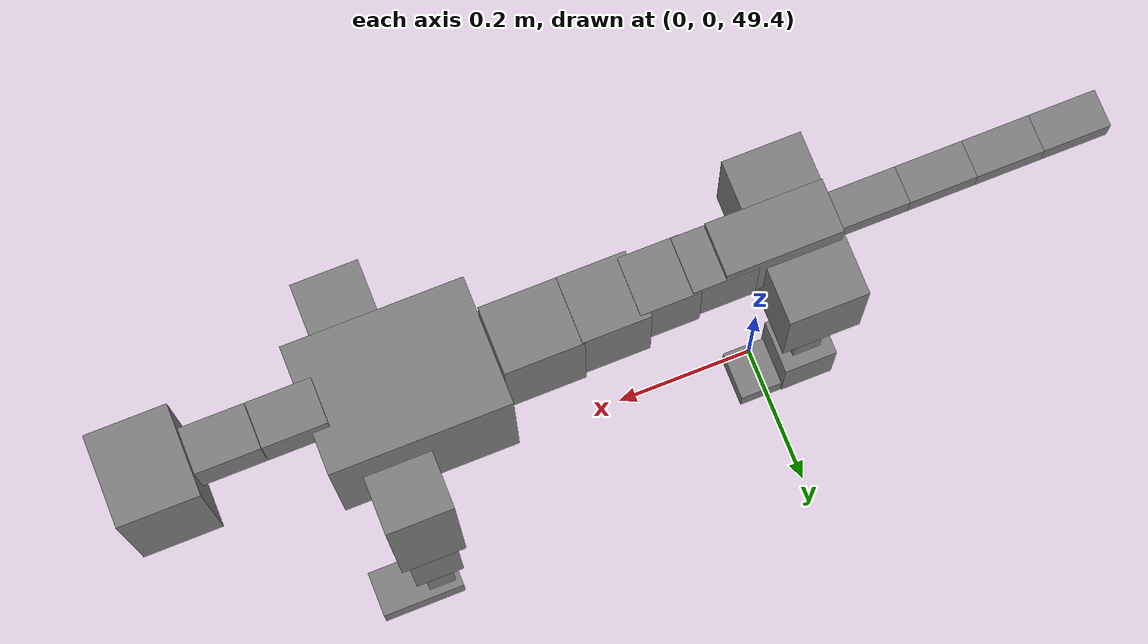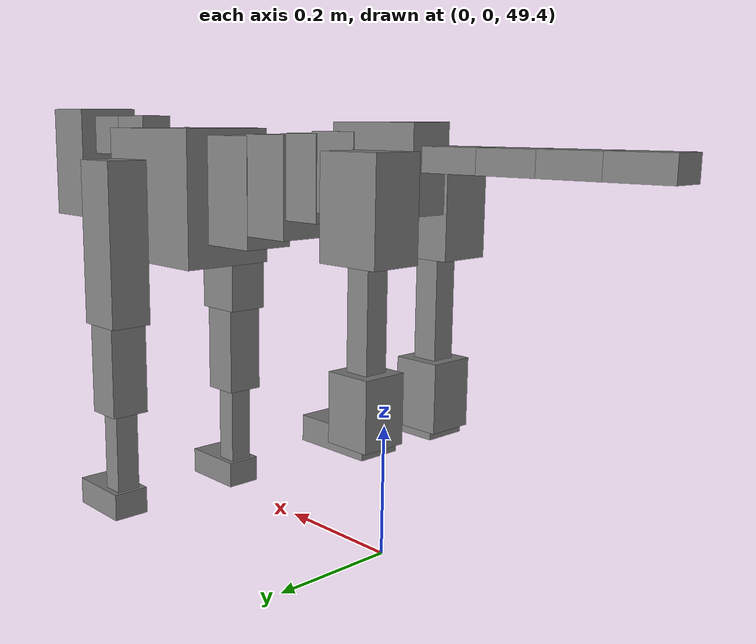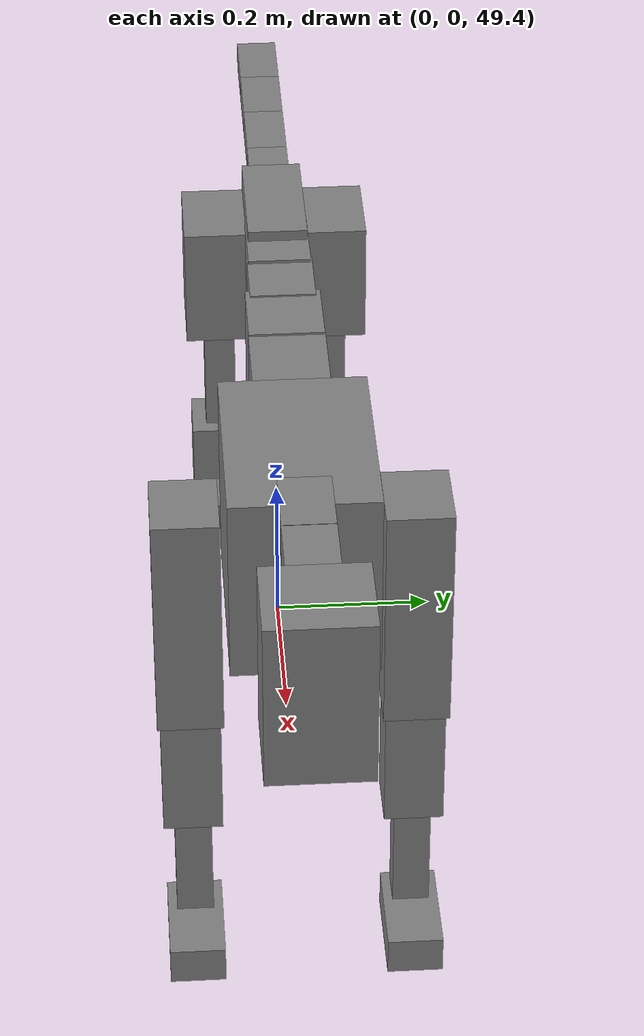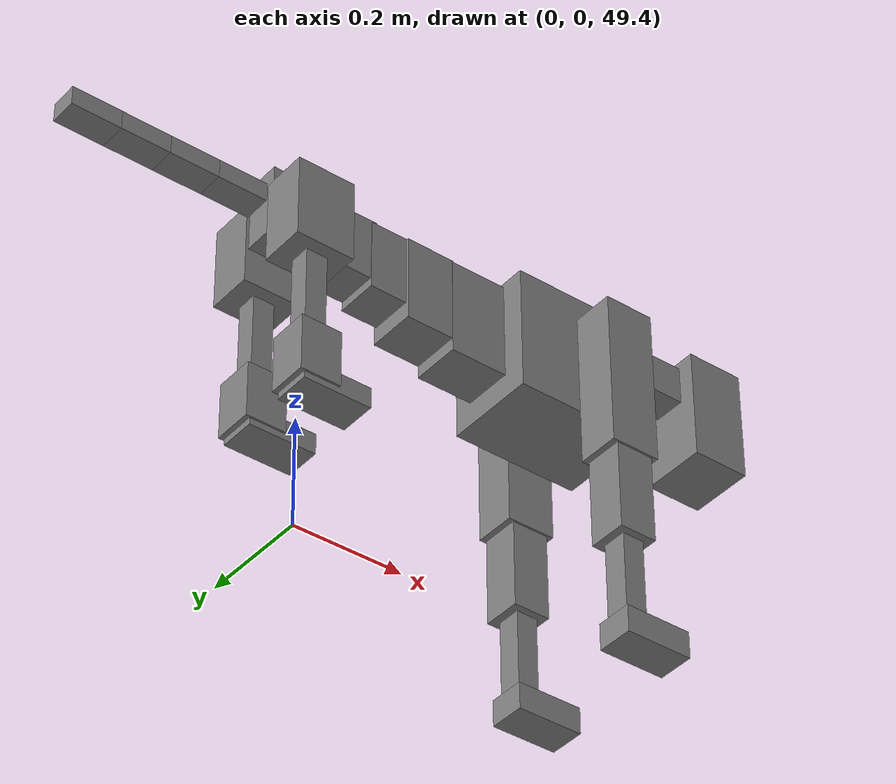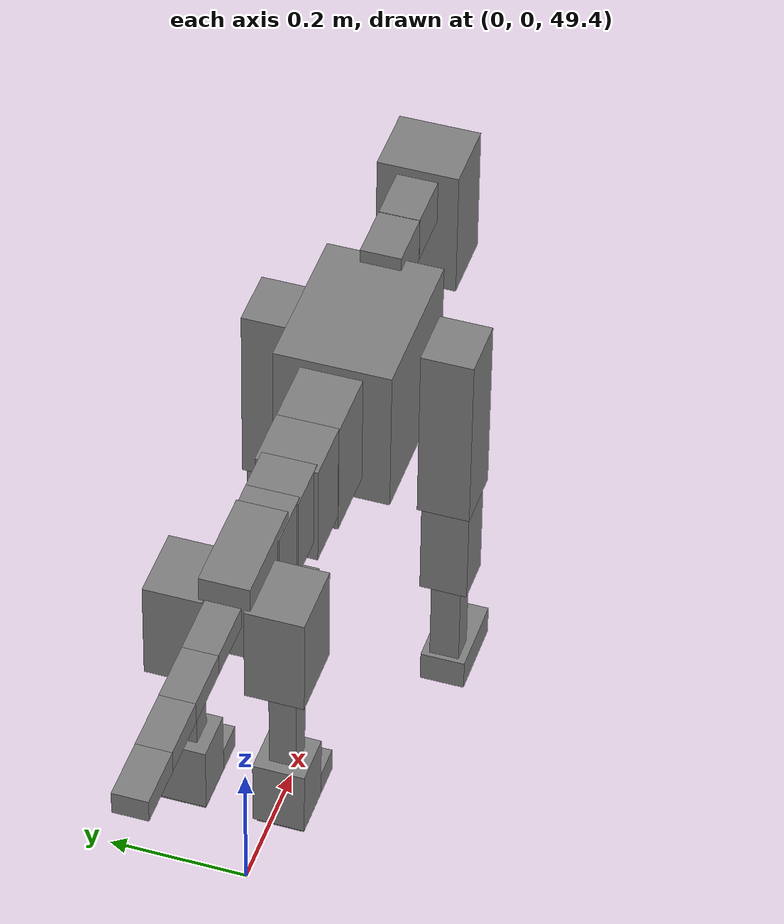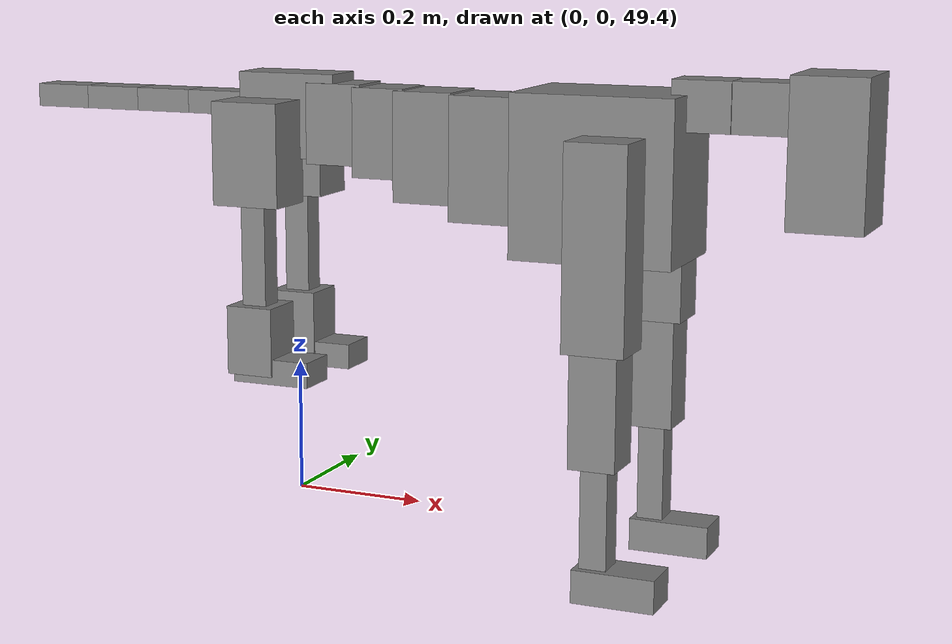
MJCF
<mujoco model="dog">

    <default>
        <joint armature="0.02" stiffness="1" damping="0.2" limited="true"/>
        <geom condim="3" friction="1 0.05 0.05" margin="0.01"/>
        <motor ctrllimited="true" ctrlrange="-1.0 1.0" forcelimited="true" gear="50"/>
    </default>

    <compiler inertiafromgeom="true" angle="radian"/>

    <option timestep="0.016" iterations="50" tolerance="1e-10" solver="Newton" jacobian="dense" cone="pyramidal"/>

    <size nconmax="20000" njmax="60000" nstack="5000000"/>
    <visual>
        <map force="0.1" zfar="30"/>
        <rgba haze="0.15 0.25 0.35 1"/>
        <quality shadowsize="2048"/>
        <global offwidth="800" offheight="800"/>
    </visual>

    <asset>
        <texture type="skybox" builtin="gradient" rgb1="0.3 0.5 0.7" rgb2="0 0 0" width="512" height="512"/>
        <texture name="texplane" type="2d" builtin="checker" rgb1=".2 .3 .4" rgb2=".1 0.15 0.2" width="512" height="512"
                 mark="cross" markrgb=".8 .8 .8"/>
        <texture name="texgeom" type="cube" builtin="flat" mark="cross" width="127" height="1278" rgb1="0.8 0.6 0.4"
                 rgb2="0.8 0.6 0.4" markrgb="1 1 1" random="0.01"/>

        <material name="matplane" reflectance="0.3" texture="texplane" texrepeat="1 1" texuniform="true"/>
        <material name="matgeom" texture="texgeom" texuniform="true" rgba="0.8 0.6 .4 1"/>
    </asset>

    <worldbody>
        <geom name="floor" pos="0 0 0" size="0 0 .25" type="plane" material="matplane" condim="3"/>

        <light directional="false" diffuse=".2 .2 .2" specular="0 0 0" pos="0 0 5" dir="0 0 -1" castshadow="false"/>
        <light mode="targetbodycom" target="torso" directional="false" diffuse=".8 .8 .8" specular="0.3 0.3 0.3"
               pos="0 0 4.0" dir="0 0 -1"/>

        <body name="root" pos="0 0 50">
            <freejoint name="root_1"/>
            <geom type="box" pos="0 0 -0.02" size="0.0774  0.0358  0.063" density="2030"/>

            <body name="spine1" pos="0.054 0 0">
                <joint name="spine1_y" axis="0 1 0" range="0 0.7" limited="true"/>
                <geom type="box" pos="0.02375 0 -0.03" size="0.04375  0.0375  0.05985" density="2030"/>

                <body name="spine2" pos="0.0612 0 0">
                    <joint name="spine2_y" axis="0 1 0" range="-0.15 0.15" limited="true"/>
                    <geom type="box" pos="0.03555  0  -0.04" size="0.04055  0.039  0.06615" density="2030"/>

                    <body name="spine3" pos="0.0730 0 0">
                        <joint name="spine3_y" axis="0 1 0" range="-0.15 0.15" limited="true"/>
                        <geom type="box" pos="0.03555  0  -0.057" size="0.04555  0.0445  0.081" density="2030"/>

                        <body name="spine4" pos="0.0780 0 0">
                            <joint name="spine4_y" axis="0 1 0" range="-0.15 0.15" limited="true"/>
                            <geom type="box" pos="0.05265  0  -0.07" size="0.05265  0.045  0.09135" density="2030"/>

                            <body name="torso" pos="0.1082 0 0">
                                <joint name="torso_y" axis="0 1 0" range="-0.15 0.15" limited="true"/>
                                <geom type="box" pos="0.11925  0  -0.085" size="0.11925  0.085  0.11745"
                                      density="2030"/>

                                <body name="neck1" pos="0.2160  0   0.0180">
                                    <joint name="neck1_y" axis="0 1 0" range="-1.2  -1" limited="true"/>
                                    <geom type="box" pos="0.0423  0  0" size="0.0423  0.03  0.036" density="2325"/>

                                    <body name="neck2" pos="0.0853  0  0">
                                        <joint name="neck2_y" axis="0 1 0" range="0.1  0" limited="true"/>
                                        <geom type="box" pos="0.0423  0  0" size="0.0423  0.03  0.036" density="2325"/>

                                        <body name="head" pos="0.0853  0  0">
                                            <joint name="head_y" axis="0 1 0" range="-0.3  -0.2" limited="true"/>
                                            <geom type="box" pos="0.0531  0  -0.055" size="0.0531  0.06  0.1044"
                                                  density="4030"/>

                                        </body>
                                    </body>
                                </body>

                                <body name="front_shoulder" pos="0.156  0   -0.0480">
                                    <joint name="front_shoulder_y" axis="0 1 0" range="-1 1.5" limited="true"/>
                                    <geom type="box" pos="0 0.13 -0.1182" size="0.0450  0.0384  0.1448" density="1158"/>
                                    <geom type="box" pos="0 -0.13 -0.1182" size="0.0450  0.0384  0.1448"
                                          density="1158"/>

                                    <body name="front_elbow" pos="0  0  -0.2363">
                                        <joint name="front_elbow_y" axis="0 1 0" range="-2 0" limited="true"/>
                                        <geom type="box" pos="0 0.13 -0.0941" size="0.0342  0.0350  0.0941"
                                              density="1081"/>
                                        <geom type="box" pos="0 -0.13 -0.0941" size="0.0342  0.0350  0.0941"
                                              density="1081"/>

                                        <body name="front_wrist" pos="0  0  -0.1883">
                                            <joint name="front_wrist_y" axis="0 1 0" range="-0.2 0" limited="true"/>
                                            <geom type="box" pos="0 0.13 -0.0796" size="0.0197  0.0219  0.0928"
                                                  density="1664"/>
                                            <geom type="box" pos="0 -0.13 -0.0796" size="0.0197  0.0219  0.0928"
                                                  density="1664"/>

                                            <body name="front_finger_end" pos="0  0  -0.1592">
                                                <joint name="front_finger_y" axis="0 1 0" range="-0.4 1"
                                                       limited="true"/>
                                                <geom type="box" pos="0.0330  0.13  -0.0092"
                                                      size="0.0605  0.0330  0.0242" density="1515"/>
                                                <geom type="box" pos="0.0330  -0.13  -0.0092"
                                                      size="0.0605  0.0330  0.0242" density="1515"/>

                                            </body>

                                        </body>
                                    </body>
                                </body>

                            </body>
                        </body>
                    </body>
                </body>
            </body>

            <body name="back_hip" pos="-0.03 0 -0.018">
                <joint name="back_hip_y" axis="0 1 0" range="-1.5 0.3" limited="true"/>
                <geom type="box" pos="0 0.07 -0.0539" size="0.0530  0.0416  0.0767" density="1154"/>
                <geom type="box" pos="0 -0.07 -0.0539" size="0.0530  0.0416  0.0767" density="1154"/>

                <body name="back_knee" pos="0  0  -0.1077">
                    <joint name="back_knee_y" axis="0 1 0" range="0 2.8" limited="true"/>
                    <geom type="box" pos="0 0.07 -0.0926" size="0.0193  0.0190  0.1082" density="1227"/>
                    <geom type="box" pos="0 -0.07 -0.0926" size="0.0193  0.0190  0.1082" density="1227"/>

                    <body name="back_ankle" pos="0  0  -0.1853">
                        <joint name="back_ankle_y" axis="0 1 0" range="-2.2 0" limited="true"/>
                        <geom type="box" pos="0 0.07 -0.0403" size="0.0366  0.0366  0.0516" density="1284"/>
                        <geom type="box" pos="0 -0.07 -0.0403" size="0.0366  0.0366  0.0516" density="1284"/>

                        <body name="back_toe_end" pos="0  0  -0.0807">
                            <joint name="back_toe_y" axis="0 1 0" range="-0.4 1" limited="true"/>
                            <geom type="box" pos="0.0334  0.07  -0.0040" size="0.0612  0.0334  0.0190" density="1515"/>
                            <geom type="box" pos="0.0334  -0.07  -0.0040" size="0.0612  0.0334  0.0190" density="1515"/>

                        </body>
                    </body>
                </body>
            </body>

            <body name="tail1" pos="-0.074 0 -0.006">
                <joint name="tail1_y" axis="0 1 0" range="-0.2 0.2" limited="true"/>
                <geom type="box" pos="-0.0536  0  0" size="0.045  0.025  0.0175" density="1587"/>

                <body name="tail2" pos="-0.09 0 0">
                    <joint name="tail2_y" axis="0 1 0" range="-0.2 0.2" limited="true"/>
                    <geom type="box" pos="-0.0536  0  0" size="0.045  0.025  0.0175" density="1587"/>

                    <body name="tail3" pos="-0.09 0 0">
                        <joint name="tail3_y" axis="0 1 0" range="-0.2 0.2" limited="true"/>
                        <geom type="box" pos="-0.0536  0  0" size="0.045  0.025  0.0175" density="1587"/>

                        <body name="tail4" pos="-0.09 0 0">
                            <joint name="tail4_y" axis="0 1 0" range="-0.2 0.2" limited="true"/>
                            <geom type="box" pos="-0.0536  0  0" size="0.045  0.025  0.0175" density="1587"/>

                        </body>
                    </body>
                </body>
            </body>
        </body>
    </worldbody>

    <actuator>
        <motor joint="spine1_y" forcerange="-150 150     "/>
        <motor joint="spine2_y" forcerange="-150 150     "/>
        <motor joint="spine3_y" forcerange="-150 150     "/>
        <motor joint="spine4_y" forcerange="-150 150     "/>
        <motor joint="torso_y" forcerange="-150 150     "/>
        <motor joint="neck1_y" forcerange="-100 100       "/>
        <motor joint="neck2_y" forcerange="-100 100       "/>
        <motor joint="head_y" forcerange="-150 150       "/>
        <motor joint="front_shoulder_y" forcerange="-170.41 185.87"/>
        <motor joint="front_elbow_y" forcerange="-190.40 164.01"/>
        <motor joint="front_wrist_y" forcerange="-94.88 80.63"/>
        <motor joint="front_finger_y" forcerange="-37.75 98.33"/>
        <motor joint="back_hip_y" forcerange="-393.00 361.39"/>
        <motor joint="back_knee_y" forcerange="-253.77 223.01"/>
        <motor joint="back_angle_y" forcerange="-246.22 238.65"/>
        <motor joint="back_toe_y" forcerange="-55.30 131.72"/>
        <motor joint="tail1_y" forcerange="-50 50     "/>
        <motor joint="tail2_y" forcerange="-50 50     "/>
        <motor joint="tail3_y" forcerange="-50 50     "/>
        <motor joint="tail4_y" forcerange="-50 50     "/>
    </actuator>
</mujoco>
